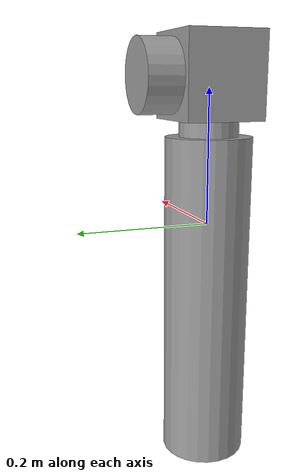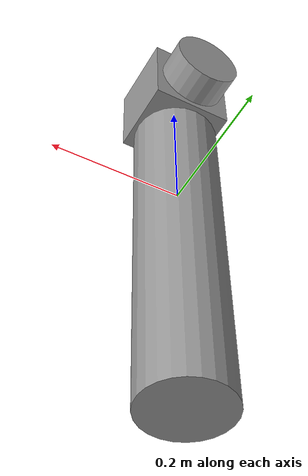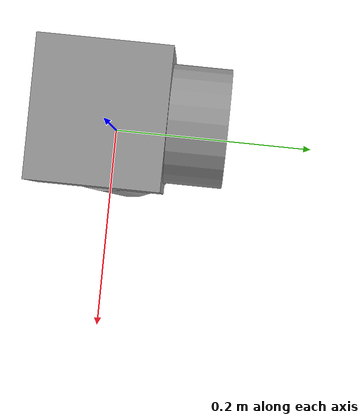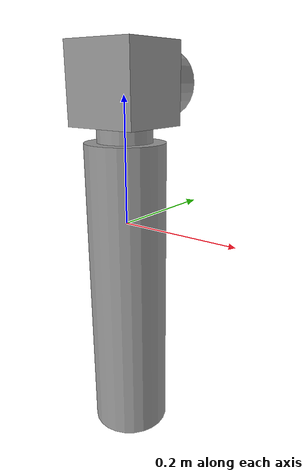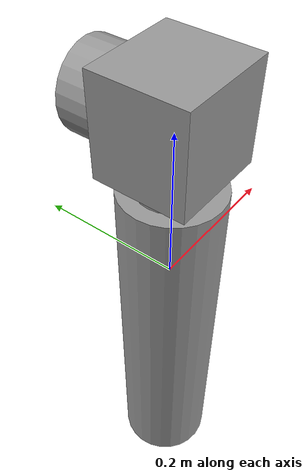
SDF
<?xml version='1.0'?>
<sdf version='1.6'>
  <model name='pan_tilt_camera'>
    <link name='inner_shaft'>
      <inertial>
        <mass>0.00386781</mass>
        <inertia>
          <ixx>8.31491e-05</ixx>
          <ixy>0</ixy>
          <ixz>0</ixz>
          <iyy>8.31491e-05</iyy>
          <iyz>0</iyz>
          <izz>3.72367e-06</izz>
        </inertia>
        <pose frame=''>0 0 0 0 -0 0</pose>
      </inertial>
      <pose frame=''>-0 -0 -0.095975 0 -0 0</pose>
      <visual name='visual'>
        <pose frame=''>0 0 0 0 -0 0</pose>
        <geometry>
          <cylinder>
            <radius>0.0438859</radius>
            <length>0.502194</length>
          </cylinder>
        </geometry>
        <material>
          <lighting>1</lighting>
          <script>
            <uri>file://media/materials/scripts/gazebo.material</uri>
            <name>Gazebo/Grey</name>
          </script>
          <ambient>0.3 0.3 0.3 1</ambient>
          <diffuse>0.7 0.7 0.7 1</diffuse>
          <specular>0.01 0.01 0.01 1</specular>
          <emissive>0 0 0 1</emissive>
        </material>
        <cast_shadows>1</cast_shadows>
        <transparency>0</transparency>
      </visual>
      <collision name='collision'>
        <laser_retro>0</laser_retro>
        <max_contacts>10</max_contacts>
        <pose frame=''>0 0 0 0 -0 0</pose>
        <geometry>
          <cylinder>
            <radius>0.0438859</radius>
            <length>0.502194</length>
          </cylinder>
        </geometry>
        <surface>
          <friction>
            <ode>
              <mu>1</mu>
              <mu2>1</mu2>
              <fdir1>0 0 0</fdir1>
              <slip1>0</slip1>
              <slip2>0</slip2>
            </ode>
            <torsional>
              <coefficient>1</coefficient>
              <patch_radius>0</patch_radius>
              <surface_radius>0</surface_radius>
              <use_patch_radius>1</use_patch_radius>
              <ode>
                <slip>0</slip>
              </ode>
            </torsional>
          </friction>
          <bounce>
            <restitution_coefficient>0</restitution_coefficient>
            <threshold>1e+06</threshold>
          </bounce>
          <contact>
            <collide_without_contact>0</collide_without_contact>
            <collide_without_contact_bitmask>1</collide_without_contact_bitmask>
            <collide_bitmask>1</collide_bitmask>
            <ode>
              <soft_cfm>0</soft_cfm>
              <soft_erp>0.2</soft_erp>
              <kp>1e+13</kp>
              <kd>1</kd>
              <max_vel>0.01</max_vel>
              <min_depth>0</min_depth>
            </ode>
            <bullet>
              <split_impulse>1</split_impulse>
              <split_impulse_penetration_threshold>-0.01</split_impulse_penetration_threshold>
              <soft_cfm>0</soft_cfm>
              <soft_erp>0.2</soft_erp>
              <kp>1e+13</kp>
              <kd>1</kd>
            </bullet>
          </contact>
        </surface>
      </collision>
    </link>
    <link name='outer_shaft'>
      <inertial>
        <mass>0.00834805</mass>
        <inertia>
          <ixx>0.000184119</ixx>
          <ixy>0</ixy>
          <ixz>0</ixz>
          <iyy>0.000184119</iyy>
          <iyz>0</iyz>
          <izz>1.73465e-05</izz>
        </inertia>
        <pose frame=''>0 0 0 0 -0 0</pose>
      </inertial>
      <pose frame=''>-0 -0 -0.120316 0 -0 0</pose>
      <visual name='visual'>
        <pose frame=''>0 0 0 0 -0 0</pose>
        <geometry>
          <cylinder>
            <radius>0.0644733</radius>
            <length>0.502194</length>
          </cylinder>
        </geometry>
        <material>
          <lighting>1</lighting>
          <script>
            <uri>file://media/materials/scripts/gazebo.material</uri>
            <name>Gazebo/Grey</name>
          </script>
          <ambient>0.3 0.3 0.3 1</ambient>
          <diffuse>0.7 0.7 0.7 1</diffuse>
          <specular>0.01 0.01 0.01 1</specular>
          <emissive>0 0 0 1</emissive>
          <shader type='pixel'/>
        </material>
        <cast_shadows>1</cast_shadows>
        <transparency>0</transparency>
      </visual>
      <collision name='collision'>
        <laser_retro>0</laser_retro>
        <max_contacts>10</max_contacts>
        <pose frame=''>0 0 0 0 -0 0</pose>
        <geometry>
          <cylinder>
            <radius>0.064473</radius>
            <length>0.502194</length>
          </cylinder>
        </geometry>
        <surface>
          <friction>
            <ode>
              <mu>1</mu>
              <mu2>1</mu2>
              <fdir1>0 0 0</fdir1>
              <slip1>0</slip1>
              <slip2>0</slip2>
            </ode>
            <torsional>
              <coefficient>1</coefficient>
              <patch_radius>0</patch_radius>
              <surface_radius>0</surface_radius>
              <use_patch_radius>1</use_patch_radius>
              <ode>
                <slip>0</slip>
              </ode>
            </torsional>
          </friction>
          <bounce>
            <restitution_coefficient>0</restitution_coefficient>
            <threshold>1e+06</threshold>
          </bounce>
          <contact>
            <collide_without_contact>0</collide_without_contact>
            <collide_without_contact_bitmask>1</collide_without_contact_bitmask>
            <collide_bitmask>1</collide_bitmask>
            <ode>
              <soft_cfm>0</soft_cfm>
              <soft_erp>0.2</soft_erp>
              <kp>1e+13</kp>
              <kd>1</kd>
              <max_vel>0.01</max_vel>
              <min_depth>0</min_depth>
            </ode>
            <bullet>
              <split_impulse>1</split_impulse>
              <split_impulse_penetration_threshold>-0.01</split_impulse_penetration_threshold>
              <soft_cfm>0</soft_cfm>
              <soft_erp>0.2</soft_erp>
              <kp>1e+13</kp>
              <kd>1</kd>
            </bullet>
          </contact>
        </surface>
      </collision>
    </link>
    <link name='camera_link'>
      <inertial>
        <mass>0.00674962</mass>
        <inertia>
          <ixx>0</ixx>
          <ixy>0</ixy>
          <ixz>0</ixz>
          <iyy>0</iyy>
          <iyz>0</iyz>
          <izz>0</izz>
        </inertia>
        <pose frame=''>0 0 0 0 -0 0</pose>
      </inertial>
      <pose frame=''>-0 0 0.215506 0 -0 0</pose>
      <gravity>1</gravity>
      <self_collide>0</self_collide>
      <kinematic>0</kinematic>
      <enable_wind>0</enable_wind>

      <sensor name="camera" type="camera">
        <pose frame=''>0 0.1 0 -0 0 1.57</pose>
        <camera>
          <horizontal_fov>1.047</horizontal_fov>
          <image>
            <width>320</width>
            <height>240</height>
          </image>
          <clip>
            <near>0.1</near>
            <far>100</far>
          </clip>
        </camera>
        <always_on>1</always_on>
        <update_rate>30</update_rate>
        <visualize>true</visualize>
      </sensor>

      <visual name='ModelPreview_0::camera_link::visual_1'>
        <pose frame=''>0 0.08 0 1.57 -0 0</pose>
        <geometry>
          <cylinder>
            <radius>0.052595</radius>
            <length>0.06</length>
          </cylinder>
        </geometry>
        <material>
          <lighting>1</lighting>
          <script>
            <uri>file://media/materials/scripts/gazebo.material</uri>
            <name>Gazebo/Grey</name>
          </script>
          <ambient>0.3 0.3 0.3 1</ambient>
          <diffuse>0.7 0.7 0.7 1</diffuse>
          <specular>0.01 0.01 0.01 1</specular>
          <emissive>0 0 0 1</emissive>
          <shader type='vertex'>
            <normal_map>__default__</normal_map>
          </shader>
        </material>
        <cast_shadows>1</cast_shadows>
        <transparency>0</transparency>
      </visual>
      <visual name='visual'>
        <pose frame=''>0 0 0 0 -0 0</pose>
        <geometry>
          <box>
            <size>0.124303 0.116517 0.122208</size>
          </box>
        </geometry>
        <material>
          <lighting>1</lighting>
          <script>
            <uri>file://media/materials/scripts/gazebo.material</uri>
            <name>Gazebo/Grey</name>
          </script>
          <ambient>0.3 0.3 0.3 1</ambient>
          <diffuse>0.7 0.7 0.7 1</diffuse>
          <specular>0.01 0.01 0.01 1</specular>
          <emissive>0 0 0 1</emissive>
          <shader type='vertex'>
            <normal_map>__default__</normal_map>
          </shader>
        </material>
        <cast_shadows>1</cast_shadows>
        <transparency>0</transparency>
      </visual>
      <collision name='collision_1'>
        <laser_retro>0</laser_retro>
        <max_contacts>10</max_contacts>
        <pose frame=''>0 0.08 0 1.57 -0 0</pose>
        <geometry>
          <cylinder>
            <radius>0.052595</radius>
            <length>0.06</length>
          </cylinder>
        </geometry>
        <surface>
          <friction>
            <ode>
              <mu>1</mu>
              <mu2>1</mu2>
              <fdir1>0 0 0</fdir1>
              <slip1>0</slip1>
              <slip2>0</slip2>
            </ode>
            <torsional>
              <coefficient>1</coefficient>
              <patch_radius>0</patch_radius>
              <surface_radius>0</surface_radius>
              <use_patch_radius>1</use_patch_radius>
              <ode>
                <slip>0</slip>
              </ode>
            </torsional>
          </friction>
          <bounce>
            <restitution_coefficient>0</restitution_coefficient>
            <threshold>1e+06</threshold>
          </bounce>
          <contact>
            <collide_without_contact>0</collide_without_contact>
            <collide_without_contact_bitmask>1</collide_without_contact_bitmask>
            <collide_bitmask>1</collide_bitmask>
            <ode>
              <soft_cfm>0</soft_cfm>
              <soft_erp>0.2</soft_erp>
              <kp>1e+13</kp>
              <kd>1</kd>
              <max_vel>0.01</max_vel>
              <min_depth>0</min_depth>
            </ode>
            <bullet>
              <split_impulse>1</split_impulse>
              <split_impulse_penetration_threshold>-0.01</split_impulse_penetration_threshold>
              <soft_cfm>0</soft_cfm>
              <soft_erp>0.2</soft_erp>
              <kp>1e+13</kp>
              <kd>1</kd>
            </bullet>
          </contact>
        </surface>
      </collision>
      <collision name='collision'>
        <laser_retro>0</laser_retro>
        <max_contacts>10</max_contacts>
        <pose frame=''>0 0 0 0 -0 0</pose>
        <geometry>
          <box>
            <size>0.124303 0.116517 0.122208</size>
          </box>
        </geometry>
        <surface>
          <friction>
            <ode>
              <mu>1</mu>
              <mu2>1</mu2>
              <fdir1>0 0 0</fdir1>
              <slip1>0</slip1>
              <slip2>0</slip2>
            </ode>
            <torsional>
              <coefficient>1</coefficient>
              <patch_radius>0</patch_radius>
              <surface_radius>0</surface_radius>
              <use_patch_radius>1</use_patch_radius>
              <ode>
                <slip>0</slip>
              </ode>
            </torsional>
          </friction>
          <bounce>
            <restitution_coefficient>0</restitution_coefficient>
            <threshold>1e+06</threshold>
          </bounce>
          <contact>
            <collide_without_contact>0</collide_without_contact>
            <collide_without_contact_bitmask>1</collide_without_contact_bitmask>
            <collide_bitmask>1</collide_bitmask>
            <ode>
              <soft_cfm>0</soft_cfm>
              <soft_erp>0.2</soft_erp>
              <kp>1e+13</kp>
              <kd>1</kd>
              <max_vel>0.01</max_vel>
              <min_depth>0</min_depth>
            </ode>
            <bullet>
              <split_impulse>1</split_impulse>
              <split_impulse_penetration_threshold>-0.01</split_impulse_penetration_threshold>
              <soft_cfm>0</soft_cfm>
              <soft_erp>0.2</soft_erp>
              <kp>1e+13</kp>
              <kd>1</kd>
            </bullet>
          </contact>
        </surface>
      </collision>
    </link>
    <joint name='camera_joint' type='universal'>
      <parent>inner_shaft</parent>
      <child>camera_link</child>
      <pose frame=''>0 0 0 0 -0 0</pose>
      <axis>
        <xyz>1 0 0</xyz>
        <use_parent_model_frame>0</use_parent_model_frame>
        <limit>
          <lower>-1.79769e+308</lower>
          <upper>1.79769e+308</upper>
          <effort>-1</effort>
          <velocity>-1</velocity>
        </limit>
        <dynamics>
          <spring_reference>0</spring_reference>
          <spring_stiffness>0</spring_stiffness>
          <damping>0</damping>
        </dynamics>
      </axis>
      <axis2>
        <xyz>0 0 1</xyz>
        <use_parent_model_frame>0</use_parent_model_frame>
        <dynamics>
          <spring_reference>0</spring_reference>
          <spring_stiffness>0</spring_stiffness>
          <damping>0</damping>
        </dynamics>
        <limit>
          <lower>-1.79769e+308</lower>
          <upper>1.79769e+308</upper>
          <effort>-1</effort>
          <velocity>-1</velocity>
        </limit>
      </axis2>
      <physics>
        <ode>
          <limit>
            <cfm>0</cfm>
            <erp>0.2</erp>
          </limit>
          <suspension>
            <cfm>0</cfm>
            <erp>0.2</erp>
          </suspension>
        </ode>
      </physics>
    </joint>
    <joint name='shaft_joint' type='prismatic'>
      <parent>outer_shaft</parent>
      <child>inner_shaft</child>
      <pose frame=''>0 0 0 0 -0 0</pose>
      <axis>
        <xyz>0 0 1</xyz>
        <use_parent_model_frame>0</use_parent_model_frame>
        <limit>
          <lower>0</lower>
          <upper>0.4</upper>
          <effort>-1</effort>
          <velocity>-1</velocity>
        </limit>
        <dynamics>
          <spring_reference>0</spring_reference>
          <spring_stiffness>0</spring_stiffness>
          <damping>0</damping>
        </dynamics>
      </axis>
      <physics>
        <ode>
          <limit>
            <cfm>0</cfm>
            <erp>0.2</erp>
          </limit>
          <suspension>
            <cfm>0</cfm>
            <erp>0.2</erp>
          </suspension>
        </ode>
      </physics>
    </joint>
    <static>0</static>
    <allow_auto_disable>1</allow_auto_disable>
  </model>
</sdf>
